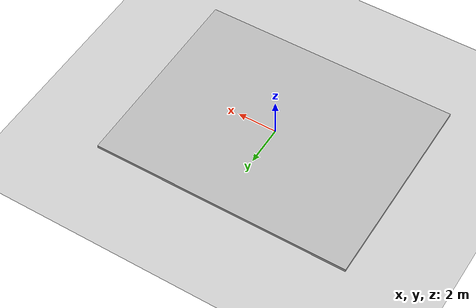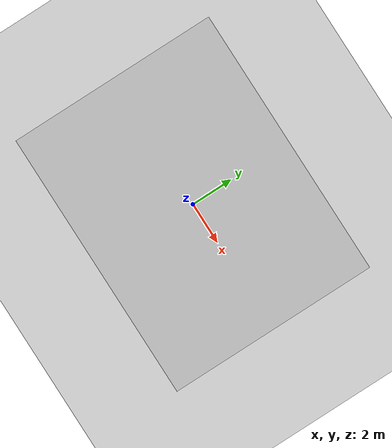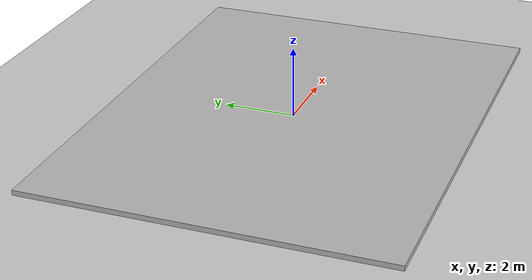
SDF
<?xml version="1.0" ?>
<sdf version="1.6">
  <world name="default">

    <include>
      <uri>model://sun</uri>
    </include>

    <include>
      <uri>model://asphalt_plane</uri>
    </include>

    <include>
      <uri>model://blue_tape_floor</uri>
      <pose>0 0 0.05 0 0 0</pose>
    </include>

  </world>
</sdf>

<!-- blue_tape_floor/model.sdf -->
<sdf version="1.5">
  <model name="blue_tape_floor">
    <static>true</static>
    <link name="link">
      <collision name="collision">
        <geometry>
          <box>
            <size>13 10 .15</size>
          </box>
        </geometry>
      </collision>
      <visual name="visual">
        <cast_shadows>false</cast_shadows>
        <geometry>
          <box>
            <size>13 10 .15</size>
          </box>
        </geometry>
        <material>
          <script>
            <uri>model://blue_tape_floor/materials/scripts</uri>
            <uri>model://blue_tape_floor/materials/textures</uri>
            <name>vrc/floor</name>
          </script>
        </material>
      </visual>
    </link>
  </model>
</sdf>
